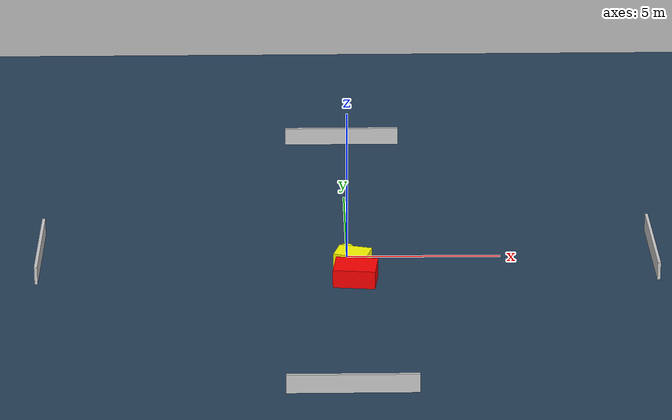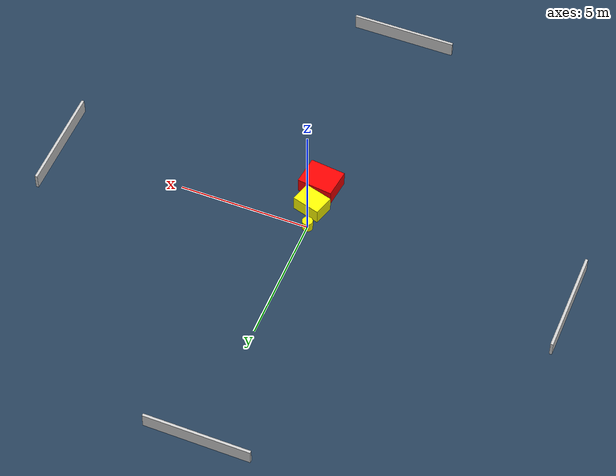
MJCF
<?xml version="1.0" ?>
<mujoco model="generated_environment">
  <option timestep="0.01" integrator="RK4" cone="elliptic"/>
  <default>
    <geom density="1"/>
  </default>
  <asset>
    <texture builtin="gradient" height="3072" name="skybox" rgb1="0.3 0.5 0.7" rgb2="0 0 0" type="skybox" width="512"/>
    <texture builtin="checker" height="300" name="groundplane" rgb1="0.2 0.3 0.4" rgb2="0.1 0.2 0.3" type="2d" width="300"/>
    <material name="groundplane" reflectance="0.2" texrepeat="5 5" texture="groundplane"/>
  </asset>
  <worldbody>
    <light dir="0 0 -1" directional="true" pos="0 0 1.5"/>
    <geom condim="3" friction="0.5 0.005 0.001" material="groundplane" name="floor" pos="0 0 0" size="0 0 0.05" type="plane"/>
    <body name="walls">
      <geom name="wall_1" condim="4" pos="-10.0 0.0 0.3" rgba="0.800000011920929 0.800000011920929 0.800000011920929 1.0" size="0.05 2.0 0.3" type="box"/>
      <geom name="wall_2" condim="4" pos="10.0 0.0 0.3" rgba="0.800000011920929 0.800000011920929 0.800000011920929 1.0" size="0.05 2.0 0.3" type="box"/>
      <geom name="wall_3" condim="4" pos="0.0 -10.0 0.3" rgba="0.800000011920929 0.800000011920929 0.800000011920929 1.0" size="2.0 0.05 0.3" type="box"/>
      <geom name="wall_4" condim="4" pos="0.0 10.0 0.3" rgba="0.800000011920929 0.800000011920929 0.800000011920929 1.0" size="2.0 0.05 0.3" type="box"/>
    </body>
    <body name="robot">
      <joint name="joint_x" type="slide" pos="0 0 0" axis="1 0 0"/>
      <joint name="joint_y" type="slide" pos="0 0 0" axis="0 1 0"/>
      <geom name="robot" type="cylinder" pos="0.0 0.0 0.2" size="0.2 0.2 0.0" mass="5.0" friction="1.0 0.005 0.0001" condim="4" rgba="1.0 1.0 0.0 1.0"/>
    </body>
    <body name="obstacle_1_movable">
      <geom name="obstacle_1_movable" condim="4" pos="0.17688671696908126 -0.882168216142035 0.3" euler="0 0 74.06869617740107" friction="0.0 0.005 0.001" rgba="1.0 1.0 0.0 1.0" size="0.39832934332637293 0.5450915370646929 0.3" type="box" mass="0.1"/>
      <joint type="free"/>
    </body>
    <body name="obstacle_2_static">
      <geom name="obstacle_2_static" condim="4" pos="0.24547798204907004 -1.957268695681183 0.3" euler="0 0 353.5769475523481" friction="0.0 0.005 0.001" rgba="1.0 0.0 0.0 1.0" size="0.680601661626168 0.5470448510888238 0.3" type="box"/>
    </body>
  </worldbody>
  <actuator>
    <motor name="actuator_x" joint="joint_x" gear="1" ctrlrange="-1 1"/>
    <motor name="actuator_y" joint="joint_y" gear="1" ctrlrange="-1 1"/>
  </actuator>
</mujoco>
